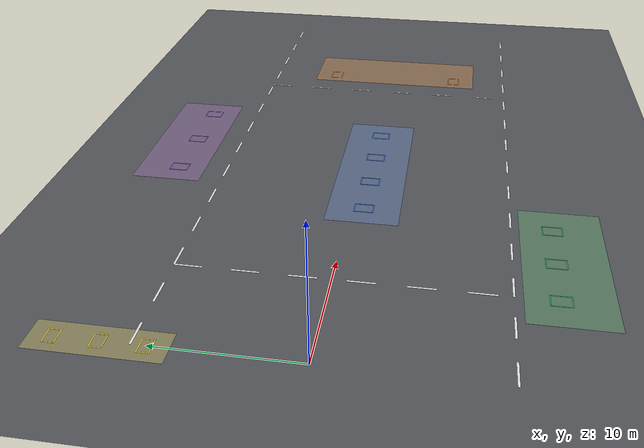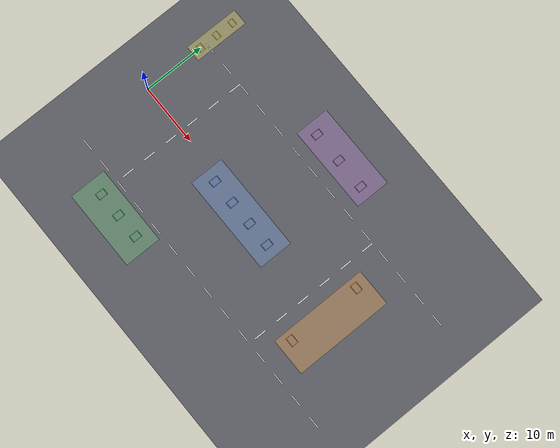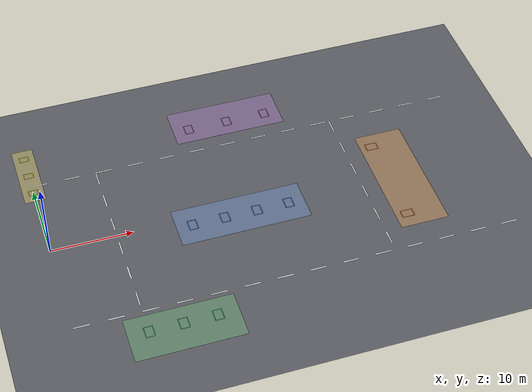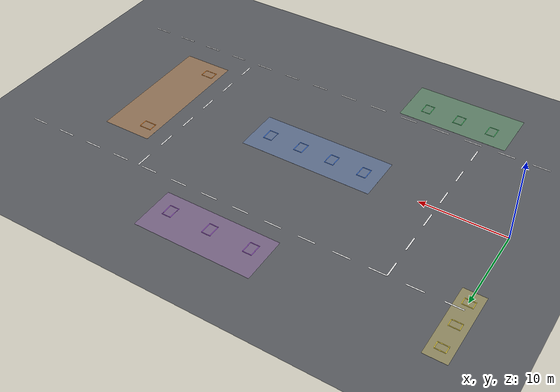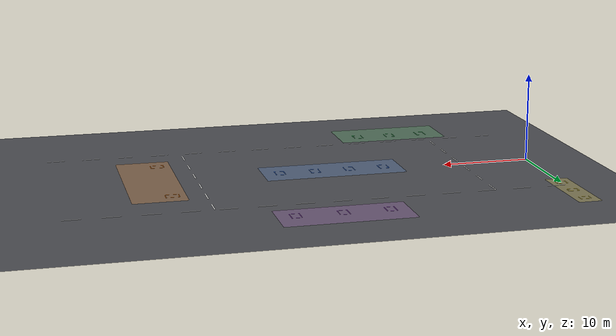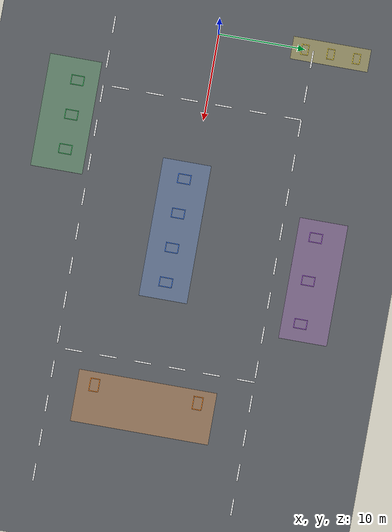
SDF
<sdf version="1.6">
 <world name="yektemak_port">
  <model name="ground_plane">
   <static>true</static>
   <link name="link">
    <collision name="collision">
     <geometry><plane><normal>0 0 1</normal><size>200 200</size></plane></geometry>
     <surface><friction><ode><mu>1.0</mu><mu2>1.0</mu2></ode></friction></surface>
    </collision>
    <visual name="visual">
     <cast_shadows>false</cast_shadows>
     <geometry><plane><normal>0 0 1</normal><size>200 200</size></plane></geometry>
     <material>
      <ambient>0.28 0.29 0.31 1</ambient>
      <diffuse>0.33 0.34 0.36 1</diffuse>
      <specular>0.15 0.15 0.15 1</specular>
     </material>
    </visual>
   </link>
  </model>
  <model name="port_markings">
   <static>true</static>
   <link name="link">
    <visual name="b739_v">
     <pose>12 -15.6 0.0015 0 0 0</pose>
     <cast_shadows>false</cast_shadows>
     <geometry><box><size>13 6 0.002</size></box></geometry>
     <material>
      <ambient>0.30 0.40 0.33 1</ambient>
      <diffuse>0.35 0.475 0.38749999999999996 1</diffuse>
      <specular>0.15 0.15 0.15 1</specular>
     </material>
    </visual>
    <visual name="b740_v">
     <pose>23 -1 0.0015 0 0 0</pose>
     <cast_shadows>false</cast_shadows>
     <geometry><box><size>16 5.6 0.002</size></box></geometry>
     <material>
      <ambient>0.30 0.35 0.45 1</ambient>
      <diffuse>0.35 0.4125 0.525 1</diffuse>
      <specular>0.15 0.15 0.15 1</specular>
     </material>
    </visual>
    <visual name="b741_v">
     <pose>43.5 -1 0.0015 0 0 0</pose>
     <cast_shadows>false</cast_shadows>
     <geometry><box><size>6 16 0.002</size></box></geometry>
     <material>
      <ambient>0.46 0.36 0.28 1</ambient>
      <diffuse>0.5375 0.425 0.325 1</diffuse>
      <specular>0.15 0.15 0.15 1</specular>
     </material>
    </visual>
    <visual name="b742_v">
     <pose>26 15.6 0.0015 0 0 0</pose>
     <cast_shadows>false</cast_shadows>
     <geometry><box><size>14 5.6 0.002</size></box></geometry>
     <material>
      <ambient>0.38 0.32 0.42 1</ambient>
      <diffuse>0.44999999999999996 0.375 0.5 1</diffuse>
      <specular>0.15 0.15 0.15 1</specular>
     </material>
    </visual>
    <visual name="b743_v">
     <pose>0 13 0.0015 0 0 0</pose>
     <cast_shadows>false</cast_shadows>
     <geometry><box><size>2.6 9 0.002</size></box></geometry>
     <material>
      <ambient>0.46 0.44 0.31 1</ambient>
      <diffuse>0.5375 0.5125 0.3625 1</diffuse>
      <specular>0.15 0.15 0.15 1</specular>
     </material>
    </visual>
    <visual name="b744_v">
     <pose>0 10.4 0.004 0 0 0</pose>
     <cast_shadows>false</cast_shadows>
     <geometry><box><size>1.23 0.08 0.002</size></box></geometry>
     <material>
      <ambient>0.81 0.72 0.21 1</ambient>
      <diffuse>0.95 0.85 0.25 1</diffuse>
      <specular>0.15 0.15 0.15 1</specular>
     </material>
    </visual>
    <visual name="b745_v">
     <pose>0 9.6 0.004 0 0 0</pose>
     <cast_shadows>false</cast_shadows>
     <geometry><box><size>1.23 0.08 0.002</size></box></geometry>
     <material>
      <ambient>0.81 0.72 0.21 1</ambient>
      <diffuse>0.95 0.85 0.25 1</diffuse>
      <specular>0.15 0.15 0.15 1</specular>
     </material>
    </visual>
    <visual name="b746_v">
     <pose>0.575 10 0.004 0 0 0</pose>
     <cast_shadows>false</cast_shadows>
     <geometry><box><size>0.08 0.8 0.002</size></box></geometry>
     <material>
      <ambient>0.81 0.72 0.21 1</ambient>
      <diffuse>0.95 0.85 0.25 1</diffuse>
      <specular>0.15 0.15 0.15 1</specular>
     </material>
    </visual>
    <visual name="b747_v">
     <pose>-0.575 10 0.004 0 0 0</pose>
     <cast_shadows>false</cast_shadows>
     <geometry><box><size>0.08 0.8 0.002</size></box></geometry>
     <material>
      <ambient>0.81 0.72 0.21 1</ambient>
      <diffuse>0.95 0.85 0.25 1</diffuse>
      <specular>0.15 0.15 0.15 1</specular>
     </material>
    </visual>
    <visual name="b748_v">
     <pose>0 13.4 0.004 0 0 0</pose>
     <cast_shadows>false</cast_shadows>
     <geometry><box><size>1.23 0.08 0.002</size></box></geometry>
     <material>
      <ambient>0.81 0.72 0.21 1</ambient>
      <diffuse>0.95 0.85 0.25 1</diffuse>
      <specular>0.15 0.15 0.15 1</specular>
     </material>
    </visual>
    <visual name="b749_v">
     <pose>0 12.6 0.004 0 0 0</pose>
     <cast_shadows>false</cast_shadows>
     <geometry><box><size>1.23 0.08 0.002</size></box></geometry>
     <material>
      <ambient>0.81 0.72 0.21 1</ambient>
      <diffuse>0.95 0.85 0.25 1</diffuse>
      <specular>0.15 0.15 0.15 1</specular>
     </material>
    </visual>
    <visual name="b750_v">
     <pose>0.575 13 0.004 0 0 0</pose>
     <cast_shadows>false</cast_shadows>
     <geometry><box><size>0.08 0.8 0.002</size></box></geometry>
     <material>
      <ambient>0.81 0.72 0.21 1</ambient>
      <diffuse>0.95 0.85 0.25 1</diffuse>
      <specular>0.15 0.15 0.15 1</specular>
     </material>
    </visual>
    <visual name="b751_v">
     <pose>-0.575 13 0.004 0 0 0</pose>
     <cast_shadows>false</cast_shadows>
     <geometry><box><size>0.08 0.8 0.002</size></box></geometry>
     <material>
      <ambient>0.81 0.72 0.21 1</ambient>
      <diffuse>0.95 0.85 0.25 1</diffuse>
      <specular>0.15 0.15 0.15 1</specular>
     </material>
    </visual>
    <visual name="b752_v">
     <pose>0 16.4 0.004 0 0 0</pose>
     <cast_shadows>false</cast_shadows>
     <geometry><box><size>1.23 0.08 0.002</size></box></geometry>
     <material>
      <ambient>0.81 0.72 0.21 1</ambient>
      <diffuse>0.95 0.85 0.25 1</diffuse>
      <specular>0.15 0.15 0.15 1</specular>
     </material>
    </visual>
    <visual name="b753_v">
     <pose>0 15.6 0.004 0 0 0</pose>
     <cast_shadows>false</cast_shadows>
     <geometry><box><size>1.23 0.08 0.002</size></box></geometry>
     <material>
      <ambient>0.81 0.72 0.21 1</ambient>
      <diffuse>0.95 0.85 0.25 1</diffuse>
      <specular>0.15 0.15 0.15 1</specular>
     </material>
    </visual>
    <visual name="b754_v">
     <pose>0.575 16 0.004 0 0 0</pose>
     <cast_shadows>false</cast_shadows>
     <geometry><box><size>0.08 0.8 0.002</size></box></geometry>
     <material>
      <ambient>0.81 0.72 0.21 1</ambient>
      <diffuse>0.95 0.85 0.25 1</diffuse>
      <specular>0.15 0.15 0.15 1</specular>
     </material>
    </visual>
    <visual name="b755_v">
     <pose>-0.575 16 0.004 0 0 0</pose>
     <cast_shadows>false</cast_shadows>
     <geometry><box><size>0.08 0.8 0.002</size></box></geometry>
     <material>
      <ambient>0.81 0.72 0.21 1</ambient>
      <diffuse>0.95 0.85 0.25 1</diffuse>
      <specular>0.15 0.15 0.15 1</specular>
     </material>
    </visual>
    <visual name="b756_v">
     <pose>8 -14.28 0.004 0 0 0</pose>
     <cast_shadows>false</cast_shadows>
     <geometry><box><size>1.13 0.08 0.002</size></box></geometry>
     <material>
      <ambient>0.17 0.59 0.30 1</ambient>
      <diffuse>0.2 0.7 0.35 1</diffuse>
      <specular>0.15 0.15 0.15 1</specular>
     </material>
    </visual>
    <visual name="b757_v">
     <pose>8 -15.72 0.004 0 0 0</pose>
     <cast_shadows>false</cast_shadows>
     <geometry><box><size>1.13 0.08 0.002</size></box></geometry>
     <material>
      <ambient>0.17 0.59 0.30 1</ambient>
      <diffuse>0.2 0.7 0.35 1</diffuse>
      <specular>0.15 0.15 0.15 1</specular>
     </material>
    </visual>
    <visual name="b758_v">
     <pose>8.525 -15 0.004 0 0 0</pose>
     <cast_shadows>false</cast_shadows>
     <geometry><box><size>0.08 1.45 0.002</size></box></geometry>
     <material>
      <ambient>0.17 0.59 0.30 1</ambient>
      <diffuse>0.2 0.7 0.35 1</diffuse>
      <specular>0.15 0.15 0.15 1</specular>
     </material>
    </visual>
    <visual name="b759_v">
     <pose>7.475 -15 0.004 0 0 0</pose>
     <cast_shadows>false</cast_shadows>
     <geometry><box><size>0.08 1.45 0.002</size></box></geometry>
     <material>
      <ambient>0.17 0.59 0.30 1</ambient>
      <diffuse>0.2 0.7 0.35 1</diffuse>
      <specular>0.15 0.15 0.15 1</specular>
     </material>
    </visual>
    <visual name="b760_v">
     <pose>12 -14.28 0.004 0 0 0</pose>
     <cast_shadows>false</cast_shadows>
     <geometry><box><size>1.13 0.08 0.002</size></box></geometry>
     <material>
      <ambient>0.17 0.59 0.30 1</ambient>
      <diffuse>0.2 0.7 0.35 1</diffuse>
      <specular>0.15 0.15 0.15 1</specular>
     </material>
    </visual>
    <visual name="b761_v">
     <pose>12 -15.72 0.004 0 0 0</pose>
     <cast_shadows>false</cast_shadows>
     <geometry><box><size>1.13 0.08 0.002</size></box></geometry>
     <material>
      <ambient>0.17 0.59 0.30 1</ambient>
      <diffuse>0.2 0.7 0.35 1</diffuse>
      <specular>0.15 0.15 0.15 1</specular>
     </material>
    </visual>
    <visual name="b762_v">
     <pose>12.53 -15 0.004 0 0 0</pose>
     <cast_shadows>false</cast_shadows>
     <geometry><box><size>0.08 1.45 0.002</size></box></geometry>
     <material>
      <ambient>0.17 0.59 0.30 1</ambient>
      <diffuse>0.2 0.7 0.35 1</diffuse>
      <specular>0.15 0.15 0.15 1</specular>
     </material>
    </visual>
    <visual name="b763_v">
     <pose>11.47 -15 0.004 0 0 0</pose>
     <cast_shadows>false</cast_shadows>
     <geometry><box><size>0.08 1.45 0.002</size></box></geometry>
     <material>
      <ambient>0.17 0.59 0.30 1</ambient>
      <diffuse>0.2 0.7 0.35 1</diffuse>
      <specular>0.15 0.15 0.15 1</specular>
     </material>
    </visual>
    <visual name="b764_v">
     <pose>16 -14.28 0.004 0 0 0</pose>
     <cast_shadows>false</cast_shadows>
     <geometry><box><size>1.13 0.08 0.002</size></box></geometry>
     <material>
      <ambient>0.17 0.59 0.30 1</ambient>
      <diffuse>0.2 0.7 0.35 1</diffuse>
      <specular>0.15 0.15 0.15 1</specular>
     </material>
    </visual>
    <visual name="b765_v">
     <pose>16 -15.72 0.004 0 0 0</pose>
     <cast_shadows>false</cast_shadows>
     <geometry><box><size>1.13 0.08 0.002</size></box></geometry>
     <material>
      <ambient>0.17 0.59 0.30 1</ambient>
      <diffuse>0.2 0.7 0.35 1</diffuse>
      <specular>0.15 0.15 0.15 1</specular>
     </material>
    </visual>
    <visual name="b766_v">
     <pose>16.52 -15 0.004 0 0 0</pose>
     <cast_shadows>false</cast_shadows>
     <geometry><box><size>0.08 1.45 0.002</size></box></geometry>
     <material>
      <ambient>0.17 0.59 0.30 1</ambient>
      <diffuse>0.2 0.7 0.35 1</diffuse>
      <specular>0.15 0.15 0.15 1</specular>
     </material>
    </visual>
    <visual name="b767_v">
     <pose>15.47 -15 0.004 0 0 0</pose>
     <cast_shadows>false</cast_shadows>
     <geometry><box><size>0.08 1.45 0.002</size></box></geometry>
     <material>
      <ambient>0.17 0.59 0.30 1</ambient>
      <diffuse>0.2 0.7 0.35 1</diffuse>
      <specular>0.15 0.15 0.15 1</specular>
     </material>
    </visual>
    <visual name="b768_v">
     <pose>17 -0.275 0.004 0 0 0</pose>
     <cast_shadows>false</cast_shadows>
     <geometry><box><size>1.13 0.08 0.002</size></box></geometry>
     <material>
      <ambient>0.17 0.38 0.77 1</ambient>
      <diffuse>0.2 0.45 0.9 1</diffuse>
      <specular>0.15 0.15 0.15 1</specular>
     </material>
    </visual>
    <visual name="b769_v">
     <pose>17 -1.725 0.004 0 0 0</pose>
     <cast_shadows>false</cast_shadows>
     <geometry><box><size>1.13 0.08 0.002</size></box></geometry>
     <material>
      <ambient>0.17 0.38 0.77 1</ambient>
      <diffuse>0.2 0.45 0.9 1</diffuse>
      <specular>0.15 0.15 0.15 1</specular>
     </material>
    </visual>
    <visual name="b770_v">
     <pose>17.52 -1 0.004 0 0 0</pose>
     <cast_shadows>false</cast_shadows>
     <geometry><box><size>0.08 1.45 0.002</size></box></geometry>
     <material>
      <ambient>0.17 0.38 0.77 1</ambient>
      <diffuse>0.2 0.45 0.9 1</diffuse>
      <specular>0.15 0.15 0.15 1</specular>
     </material>
    </visual>
    <visual name="b771_v">
     <pose>16.48 -1 0.004 0 0 0</pose>
     <cast_shadows>false</cast_shadows>
     <geometry><box><size>0.08 1.45 0.002</size></box></geometry>
     <material>
      <ambient>0.17 0.38 0.77 1</ambient>
      <diffuse>0.2 0.45 0.9 1</diffuse>
      <specular>0.15 0.15 0.15 1</specular>
     </material>
    </visual>
    <visual name="b772_v">
     <pose>21 -0.275 0.004 0 0 0</pose>
     <cast_shadows>false</cast_shadows>
     <geometry><box><size>1.13 0.08 0.002</size></box></geometry>
     <material>
      <ambient>0.17 0.38 0.77 1</ambient>
      <diffuse>0.2 0.45 0.9 1</diffuse>
      <specular>0.15 0.15 0.15 1</specular>
     </material>
    </visual>
    <visual name="b773_v">
     <pose>21 -1.725 0.004 0 0 0</pose>
     <cast_shadows>false</cast_shadows>
     <geometry><box><size>1.13 0.08 0.002</size></box></geometry>
     <material>
      <ambient>0.17 0.38 0.77 1</ambient>
      <diffuse>0.2 0.45 0.9 1</diffuse>
      <specular>0.15 0.15 0.15 1</specular>
     </material>
    </visual>
    <visual name="b774_v">
     <pose>21.52 -1 0.004 0 0 0</pose>
     <cast_shadows>false</cast_shadows>
     <geometry><box><size>0.08 1.45 0.002</size></box></geometry>
     <material>
      <ambient>0.17 0.38 0.77 1</ambient>
      <diffuse>0.2 0.45 0.9 1</diffuse>
      <specular>0.15 0.15 0.15 1</specular>
     </material>
    </visual>
    <visual name="b775_v">
     <pose>20.48 -1 0.004 0 0 0</pose>
     <cast_shadows>false</cast_shadows>
     <geometry><box><size>0.08 1.45 0.002</size></box></geometry>
     <material>
      <ambient>0.17 0.38 0.77 1</ambient>
      <diffuse>0.2 0.45 0.9 1</diffuse>
      <specular>0.15 0.15 0.15 1</specular>
     </material>
    </visual>
    <visual name="b776_v">
     <pose>25 -0.275 0.004 0 0 0</pose>
     <cast_shadows>false</cast_shadows>
     <geometry><box><size>1.13 0.08 0.002</size></box></geometry>
     <material>
      <ambient>0.17 0.38 0.77 1</ambient>
      <diffuse>0.2 0.45 0.9 1</diffuse>
      <specular>0.15 0.15 0.15 1</specular>
     </material>
    </visual>
    <visual name="b777_v">
     <pose>25 -1.725 0.004 0 0 0</pose>
     <cast_shadows>false</cast_shadows>
     <geometry><box><size>1.13 0.08 0.002</size></box></geometry>
     <material>
      <ambient>0.17 0.38 0.77 1</ambient>
      <diffuse>0.2 0.45 0.9 1</diffuse>
      <specular>0.15 0.15 0.15 1</specular>
     </material>
    </visual>
    <visual name="b778_v">
     <pose>25.52 -1 0.004 0 0 0</pose>
     <cast_shadows>false</cast_shadows>
     <geometry><box><size>0.08 1.45 0.002</size></box></geometry>
     <material>
      <ambient>0.17 0.38 0.77 1</ambient>
      <diffuse>0.2 0.45 0.9 1</diffuse>
      <specular>0.15 0.15 0.15 1</specular>
     </material>
    </visual>
    <visual name="b779_v">
     <pose>24.48 -1 0.004 0 0 0</pose>
     <cast_shadows>false</cast_shadows>
     <geometry><box><size>0.08 1.45 0.002</size></box></geometry>
     <material>
      <ambient>0.17 0.38 0.77 1</ambient>
      <diffuse>0.2 0.45 0.9 1</diffuse>
      <specular>0.15 0.15 0.15 1</specular>
     </material>
    </visual>
    <visual name="b780_v">
     <pose>29 -0.275 0.004 0 0 0</pose>
     <cast_shadows>false</cast_shadows>
     <geometry><box><size>1.13 0.08 0.002</size></box></geometry>
     <material>
      <ambient>0.17 0.38 0.77 1</ambient>
      <diffuse>0.2 0.45 0.9 1</diffuse>
      <specular>0.15 0.15 0.15 1</specular>
     </material>
    </visual>
    <visual name="b781_v">
     <pose>29 -1.725 0.004 0 0 0</pose>
     <cast_shadows>false</cast_shadows>
     <geometry><box><size>1.13 0.08 0.002</size></box></geometry>
     <material>
      <ambient>0.17 0.38 0.77 1</ambient>
      <diffuse>0.2 0.45 0.9 1</diffuse>
      <specular>0.15 0.15 0.15 1</specular>
     </material>
    </visual>
    <visual name="b782_v">
     <pose>29.52 -1 0.004 0 0 0</pose>
     <cast_shadows>false</cast_shadows>
     <geometry><box><size>0.08 1.45 0.002</size></box></geometry>
     <material>
      <ambient>0.17 0.38 0.77 1</ambient>
      <diffuse>0.2 0.45 0.9 1</diffuse>
      <specular>0.15 0.15 0.15 1</specular>
     </material>
    </visual>
    <visual name="b783_v">
     <pose>28.48 -1 0.004 0 0 0</pose>
     <cast_shadows>false</cast_shadows>
     <geometry><box><size>0.08 1.45 0.002</size></box></geometry>
     <material>
      <ambient>0.17 0.38 0.77 1</ambient>
      <diffuse>0.2 0.45 0.9 1</diffuse>
      <specular>0.15 0.15 0.15 1</specular>
     </material>
    </visual>
    <visual name="b784_v">
     <pose>42 5.525 0.004 0 0 0</pose>
     <cast_shadows>false</cast_shadows>
     <geometry><box><size>1.53 0.08 0.002</size></box></geometry>
     <material>
      <ambient>0.81 0.42 0.09 1</ambient>
      <diffuse>0.95 0.5 0.1 1</diffuse>
      <specular>0.15 0.15 0.15 1</specular>
     </material>
    </visual>
    <visual name="b785_v">
     <pose>42 4.475 0.004 0 0 0</pose>
     <cast_shadows>false</cast_shadows>
     <geometry><box><size>1.53 0.08 0.002</size></box></geometry>
     <material>
      <ambient>0.81 0.42 0.09 1</ambient>
      <diffuse>0.95 0.5 0.1 1</diffuse>
      <specular>0.15 0.15 0.15 1</specular>
     </material>
    </visual>
    <visual name="b786_v">
     <pose>42.73 5 0.004 0 0 0</pose>
     <cast_shadows>false</cast_shadows>
     <geometry><box><size>0.08 1.05 0.002</size></box></geometry>
     <material>
      <ambient>0.81 0.42 0.09 1</ambient>
      <diffuse>0.95 0.5 0.1 1</diffuse>
      <specular>0.15 0.15 0.15 1</specular>
     </material>
    </visual>
    <visual name="b787_v">
     <pose>41.27 5 0.004 0 0 0</pose>
     <cast_shadows>false</cast_shadows>
     <geometry><box><size>0.08 1.05 0.002</size></box></geometry>
     <material>
      <ambient>0.81 0.42 0.09 1</ambient>
      <diffuse>0.95 0.5 0.1 1</diffuse>
      <specular>0.15 0.15 0.15 1</specular>
     </material>
    </visual>
    <visual name="b788_v">
     <pose>42 -6.475 0.004 0 0 0</pose>
     <cast_shadows>false</cast_shadows>
     <geometry><box><size>1.53 0.08 0.002</size></box></geometry>
     <material>
      <ambient>0.81 0.42 0.09 1</ambient>
      <diffuse>0.95 0.5 0.1 1</diffuse>
      <specular>0.15 0.15 0.15 1</specular>
     </material>
    </visual>
    <visual name="b789_v">
     <pose>42 -7.525 0.004 0 0 0</pose>
     <cast_shadows>false</cast_shadows>
     <geometry><box><size>1.53 0.08 0.002</size></box></geometry>
     <material>
      <ambient>0.81 0.42 0.09 1</ambient>
      <diffuse>0.95 0.5 0.1 1</diffuse>
      <specular>0.15 0.15 0.15 1</specular>
     </material>
    </visual>
    <visual name="b790_v">
     <pose>42.73 -7 0.004 0 0 0</pose>
     <cast_shadows>false</cast_shadows>
     <geometry><box><size>0.08 1.05 0.002</size></box></geometry>
     <material>
      <ambient>0.81 0.42 0.09 1</ambient>
      <diffuse>0.95 0.5 0.1 1</diffuse>
      <specular>0.15 0.15 0.15 1</specular>
     </material>
    </visual>
    <visual name="b791_v">
     <pose>41.27 -7 0.004 0 0 0</pose>
     <cast_shadows>false</cast_shadows>
     <geometry><box><size>0.08 1.05 0.002</size></box></geometry>
     <material>
      <ambient>0.81 0.42 0.09 1</ambient>
      <diffuse>0.95 0.5 0.1 1</diffuse>
      <specular>0.15 0.15 0.15 1</specular>
     </material>
    </visual>
    <visual name="b792_v">
     <pose>21 15.72 0.004 0 0 0</pose>
     <cast_shadows>false</cast_shadows>
     <geometry><box><size>1.13 0.08 0.002</size></box></geometry>
     <material>
      <ambient>0.51 0.26 0.68 1</ambient>
      <diffuse>0.6 0.3 0.8 1</diffuse>
      <specular>0.15 0.15 0.15 1</specular>
     </material>
    </visual>
    <visual name="b793_v">
     <pose>21 14.28 0.004 0 0 0</pose>
     <cast_shadows>false</cast_shadows>
     <geometry><box><size>1.13 0.08 0.002</size></box></geometry>
     <material>
      <ambient>0.51 0.26 0.68 1</ambient>
      <diffuse>0.6 0.3 0.8 1</diffuse>
      <specular>0.15 0.15 0.15 1</specular>
     </material>
    </visual>
    <visual name="b794_v">
     <pose>21.52 15 0.004 0 0 0</pose>
     <cast_shadows>false</cast_shadows>
     <geometry><box><size>0.08 1.45 0.002</size></box></geometry>
     <material>
      <ambient>0.51 0.26 0.68 1</ambient>
      <diffuse>0.6 0.3 0.8 1</diffuse>
      <specular>0.15 0.15 0.15 1</specular>
     </material>
    </visual>
    <visual name="b795_v">
     <pose>20.48 15 0.004 0 0 0</pose>
     <cast_shadows>false</cast_shadows>
     <geometry><box><size>0.08 1.45 0.002</size></box></geometry>
     <material>
      <ambient>0.51 0.26 0.68 1</ambient>
      <diffuse>0.6 0.3 0.8 1</diffuse>
      <specular>0.15 0.15 0.15 1</specular>
     </material>
    </visual>
    <visual name="b796_v">
     <pose>26 15.72 0.004 0 0 0</pose>
     <cast_shadows>false</cast_shadows>
     <geometry><box><size>1.13 0.08 0.002</size></box></geometry>
     <material>
      <ambient>0.51 0.26 0.68 1</ambient>
      <diffuse>0.6 0.3 0.8 1</diffuse>
      <specular>0.15 0.15 0.15 1</specular>
     </material>
    </visual>
    <visual name="b797_v">
     <pose>26 14.28 0.004 0 0 0</pose>
     <cast_shadows>false</cast_shadows>
     <geometry><box><size>1.13 0.08 0.002</size></box></geometry>
     <material>
      <ambient>0.51 0.26 0.68 1</ambient>
      <diffuse>0.6 0.3 0.8 1</diffuse>
      <specular>0.15 0.15 0.15 1</specular>
     </material>
    </visual>
    <visual name="b798_v">
     <pose>26.52 15 0.004 0 0 0</pose>
     <cast_shadows>false</cast_shadows>
     <geometry><box><size>0.08 1.45 0.002</size></box></geometry>
     <material>
      <ambient>0.51 0.26 0.68 1</ambient>
      <diffuse>0.6 0.3 0.8 1</diffuse>
      <specular>0.15 0.15 0.15 1</specular>
     </material>
    </visual>
    <visual name="b799_v">
     <pose>25.48 15 0.004 0 0 0</pose>
     <cast_shadows>false</cast_shadows>
     <geometry><box><size>0.08 1.45 0.002</size></box></geometry>
     <material>
      <ambient>0.51 0.26 0.68 1</ambient>
      <diffuse>0.6 0.3 0.8 1</diffuse>
      <specular>0.15 0.15 0.15 1</specular>
     </material>
    </visual>
    <visual name="b800_v">
     <pose>31 15.72 0.004 0 0 0</pose>
     <cast_shadows>false</cast_shadows>
     <geometry><box><size>1.13 0.08 0.002</size></box></geometry>
     <material>
      <ambient>0.51 0.26 0.68 1</ambient>
      <diffuse>0.6 0.3 0.8 1</diffuse>
      <specular>0.15 0.15 0.15 1</specular>
     </material>
    </visual>
    <visual name="b801_v">
     <pose>31 14.28 0.004 0 0 0</pose>
     <cast_shadows>false</cast_shadows>
     <geometry><box><size>1.13 0.08 0.002</size></box></geometry>
     <material>
      <ambient>0.51 0.26 0.68 1</ambient>
      <diffuse>0.6 0.3 0.8 1</diffuse>
      <specular>0.15 0.15 0.15 1</specular>
     </material>
    </visual>
    <visual name="b802_v">
     <pose>31.52 15 0.004 0 0 0</pose>
     <cast_shadows>false</cast_shadows>
     <geometry><box><size>0.08 1.45 0.002</size></box></geometry>
     <material>
      <ambient>0.51 0.26 0.68 1</ambient>
      <diffuse>0.6 0.3 0.8 1</diffuse>
      <specular>0.15 0.15 0.15 1</specular>
     </material>
    </visual>
    <visual name="b803_v">
     <pose>30.48 15 0.004 0 0 0</pose>
     <cast_shadows>false</cast_shadows>
     <geometry><box><size>0.08 1.45 0.002</size></box></geometry>
     <material>
      <ambient>0.51 0.26 0.68 1</ambient>
      <diffuse>0.6 0.3 0.8 1</diffuse>
      <specular>0.15 0.15 0.15 1</specular>
     </material>
    </visual>
    <visual name="b804_v">
     <pose>1 11 0.003 0 0 0</pose>
     <cast_shadows>false</cast_shadows>
     <geometry><box><size>2 0.15 0.002</size></box></geometry>
     <material>
      <ambient>0.78 0.78 0.78 1</ambient>
      <diffuse>0.92 0.92 0.92 1</diffuse>
      <specular>0.15 0.15 0.15 1</specular>
     </material>
    </visual>
    <visual name="b805_v">
     <pose>5 11 0.003 0 0 0</pose>
     <cast_shadows>false</cast_shadows>
     <geometry><box><size>2 0.15 0.002</size></box></geometry>
     <material>
      <ambient>0.78 0.78 0.78 1</ambient>
      <diffuse>0.92 0.92 0.92 1</diffuse>
      <specular>0.15 0.15 0.15 1</specular>
     </material>
    </visual>
    <visual name="b806_v">
     <pose>9 11 0.003 0 0 0</pose>
     <cast_shadows>false</cast_shadows>
     <geometry><box><size>2 0.15 0.002</size></box></geometry>
     <material>
      <ambient>0.78 0.78 0.78 1</ambient>
      <diffuse>0.92 0.92 0.92 1</diffuse>
      <specular>0.15 0.15 0.15 1</specular>
     </material>
    </visual>
    <visual name="b807_v">
     <pose>13 11 0.003 0 0 0</pose>
     <cast_shadows>false</cast_shadows>
     <geometry><box><size>2 0.15 0.002</size></box></geometry>
     <material>
      <ambient>0.78 0.78 0.78 1</ambient>
      <diffuse>0.92 0.92 0.92 1</diffuse>
      <specular>0.15 0.15 0.15 1</specular>
     </material>
    </visual>
    <visual name="b808_v">
     <pose>17 11 0.003 0 0 0</pose>
     <cast_shadows>false</cast_shadows>
     <geometry><box><size>2 0.15 0.002</size></box></geometry>
     <material>
      <ambient>0.78 0.78 0.78 1</ambient>
      <diffuse>0.92 0.92 0.92 1</diffuse>
      <specular>0.15 0.15 0.15 1</specular>
     </material>
    </visual>
    <visual name="b809_v">
     <pose>21 11 0.003 0 0 0</pose>
     <cast_shadows>false</cast_shadows>
     <geometry><box><size>2 0.15 0.002</size></box></geometry>
     <material>
      <ambient>0.78 0.78 0.78 1</ambient>
      <diffuse>0.92 0.92 0.92 1</diffuse>
      <specular>0.15 0.15 0.15 1</specular>
     </material>
    </visual>
    <visual name="b810_v">
     <pose>25 11 0.003 0 0 0</pose>
     <cast_shadows>false</cast_shadows>
     <geometry><box><size>2 0.15 0.002</size></box></geometry>
     <material>
      <ambient>0.78 0.78 0.78 1</ambient>
      <diffuse>0.92 0.92 0.92 1</diffuse>
      <specular>0.15 0.15 0.15 1</specular>
     </material>
    </visual>
    <visual name="b811_v">
     <pose>29 11 0.003 0 0 0</pose>
     <cast_shadows>false</cast_shadows>
     <geometry><box><size>2 0.15 0.002</size></box></geometry>
     <material>
      <ambient>0.78 0.78 0.78 1</ambient>
      <diffuse>0.92 0.92 0.92 1</diffuse>
      <specular>0.15 0.15 0.15 1</specular>
     </material>
    </visual>
    <visual name="b812_v">
     <pose>33 11 0.003 0 0 0</pose>
     <cast_shadows>false</cast_shadows>
     <geometry><box><size>2 0.15 0.002</size></box></geometry>
     <material>
      <ambient>0.78 0.78 0.78 1</ambient>
      <diffuse>0.92 0.92 0.92 1</diffuse>
      <specular>0.15 0.15 0.15 1</specular>
     </material>
    </visual>
    <visual name="b813_v">
     <pose>37 11 0.003 0 0 0</pose>
     <cast_shadows>false</cast_shadows>
     <geometry><box><size>2 0.15 0.002</size></box></geometry>
     <material>
      <ambient>0.78 0.78 0.78 1</ambient>
      <diffuse>0.92 0.92 0.92 1</diffuse>
      <specular>0.15 0.15 0.15 1</specular>
     </material>
    </visual>
    <visual name="b814_v">
     <pose>41 11 0.003 0 0 0</pose>
     <cast_shadows>false</cast_shadows>
     <geometry><box><size>2 0.15 0.002</size></box></geometry>
     <material>
      <ambient>0.78 0.78 0.78 1</ambient>
      <diffuse>0.92 0.92 0.92 1</diffuse>
      <specular>0.15 0.15 0.15 1</specular>
     </material>
    </visual>
    <visual name="b815_v">
     <pose>45 11 0.003 0 0 0</pose>
     <cast_shadows>false</cast_shadows>
     <geometry><box><size>2 0.15 0.002</size></box></geometry>
     <material>
      <ambient>0.78 0.78 0.78 1</ambient>
      <diffuse>0.92 0.92 0.92 1</diffuse>
      <specular>0.15 0.15 0.15 1</specular>
     </material>
    </visual>
    <visual name="b816_v">
     <pose>49 11 0.003 0 0 0</pose>
     <cast_shadows>false</cast_shadows>
     <geometry><box><size>2 0.15 0.002</size></box></geometry>
     <material>
      <ambient>0.78 0.78 0.78 1</ambient>
      <diffuse>0.92 0.92 0.92 1</diffuse>
      <specular>0.15 0.15 0.15 1</specular>
     </material>
    </visual>
    <visual name="b817_v">
     <pose>53 11 0.003 0 0 0</pose>
     <cast_shadows>false</cast_shadows>
     <geometry><box><size>2 0.15 0.002</size></box></geometry>
     <material>
      <ambient>0.78 0.78 0.78 1</ambient>
      <diffuse>0.92 0.92 0.92 1</diffuse>
      <specular>0.15 0.15 0.15 1</specular>
     </material>
    </visual>
    <visual name="b818_v">
     <pose>1 -12 0.003 0 0 0</pose>
     <cast_shadows>false</cast_shadows>
     <geometry><box><size>2 0.15 0.002</size></box></geometry>
     <material>
      <ambient>0.78 0.78 0.78 1</ambient>
      <diffuse>0.92 0.92 0.92 1</diffuse>
      <specular>0.15 0.15 0.15 1</specular>
     </material>
    </visual>
    <visual name="b819_v">
     <pose>5 -12 0.003 0 0 0</pose>
     <cast_shadows>false</cast_shadows>
     <geometry><box><size>2 0.15 0.002</size></box></geometry>
     <material>
      <ambient>0.78 0.78 0.78 1</ambient>
      <diffuse>0.92 0.92 0.92 1</diffuse>
      <specular>0.15 0.15 0.15 1</specular>
     </material>
    </visual>
    <visual name="b820_v">
     <pose>9 -12 0.003 0 0 0</pose>
     <cast_shadows>false</cast_shadows>
     <geometry><box><size>2 0.15 0.002</size></box></geometry>
     <material>
      <ambient>0.78 0.78 0.78 1</ambient>
      <diffuse>0.92 0.92 0.92 1</diffuse>
      <specular>0.15 0.15 0.15 1</specular>
     </material>
    </visual>
    <visual name="b821_v">
     <pose>13 -12 0.003 0 0 0</pose>
     <cast_shadows>false</cast_shadows>
     <geometry><box><size>2 0.15 0.002</size></box></geometry>
     <material>
      <ambient>0.78 0.78 0.78 1</ambient>
      <diffuse>0.92 0.92 0.92 1</diffuse>
      <specular>0.15 0.15 0.15 1</specular>
     </material>
    </visual>
    <visual name="b822_v">
     <pose>17 -12 0.003 0 0 0</pose>
     <cast_shadows>false</cast_shadows>
     <geometry><box><size>2 0.15 0.002</size></box></geometry>
     <material>
      <ambient>0.78 0.78 0.78 1</ambient>
      <diffuse>0.92 0.92 0.92 1</diffuse>
      <specular>0.15 0.15 0.15 1</specular>
     </material>
    </visual>
    <visual name="b823_v">
     <pose>21 -12 0.003 0 0 0</pose>
     <cast_shadows>false</cast_shadows>
     <geometry><box><size>2 0.15 0.002</size></box></geometry>
     <material>
      <ambient>0.78 0.78 0.78 1</ambient>
      <diffuse>0.92 0.92 0.92 1</diffuse>
      <specular>0.15 0.15 0.15 1</specular>
     </material>
    </visual>
    <visual name="b824_v">
     <pose>25 -12 0.003 0 0 0</pose>
     <cast_shadows>false</cast_shadows>
     <geometry><box><size>2 0.15 0.002</size></box></geometry>
     <material>
      <ambient>0.78 0.78 0.78 1</ambient>
      <diffuse>0.92 0.92 0.92 1</diffuse>
      <specular>0.15 0.15 0.15 1</specular>
     </material>
    </visual>
    <visual name="b825_v">
     <pose>29 -12 0.003 0 0 0</pose>
     <cast_shadows>false</cast_shadows>
     <geometry><box><size>2 0.15 0.002</size></box></geometry>
     <material>
      <ambient>0.78 0.78 0.78 1</ambient>
      <diffuse>0.92 0.92 0.92 1</diffuse>
      <specular>0.15 0.15 0.15 1</specular>
     </material>
    </visual>
    <visual name="b826_v">
     <pose>33 -12 0.003 0 0 0</pose>
     <cast_shadows>false</cast_shadows>
     <geometry><box><size>2 0.15 0.002</size></box></geometry>
     <material>
      <ambient>0.78 0.78 0.78 1</ambient>
      <diffuse>0.92 0.92 0.92 1</diffuse>
      <specular>0.15 0.15 0.15 1</specular>
     </material>
    </visual>
    <visual name="b827_v">
     <pose>37 -12 0.003 0 0 0</pose>
     <cast_shadows>false</cast_shadows>
     <geometry><box><size>2 0.15 0.002</size></box></geometry>
     <material>
      <ambient>0.78 0.78 0.78 1</ambient>
      <diffuse>0.92 0.92 0.92 1</diffuse>
      <specular>0.15 0.15 0.15 1</specular>
     </material>
    </visual>
    <visual name="b828_v">
     <pose>41 -12 0.003 0 0 0</pose>
     <cast_shadows>false</cast_shadows>
     <geometry><box><size>2 0.15 0.002</size></box></geometry>
     <material>
      <ambient>0.78 0.78 0.78 1</ambient>
      <diffuse>0.92 0.92 0.92 1</diffuse>
      <specular>0.15 0.15 0.15 1</specular>
     </material>
    </visual>
    <visual name="b829_v">
     <pose>45 -12 0.003 0 0 0</pose>
     <cast_shadows>false</cast_shadows>
     <geometry><box><size>2 0.15 0.002</size></box></geometry>
     <material>
      <ambient>0.78 0.78 0.78 1</ambient>
      <diffuse>0.92 0.92 0.92 1</diffuse>
      <specular>0.15 0.15 0.15 1</specular>
     </material>
    </visual>
    <visual name="b830_v">
     <pose>49 -12 0.003 0 0 0</pose>
     <cast_shadows>false</cast_shadows>
     <geometry><box><size>2 0.15 0.002</size></box></geometry>
     <material>
      <ambient>0.78 0.78 0.78 1</ambient>
      <diffuse>0.92 0.92 0.92 1</diffuse>
      <specular>0.15 0.15 0.15 1</specular>
     </material>
    </visual>
    <visual name="b831_v">
     <pose>53 -12 0.003 0 0 0</pose>
     <cast_shadows>false</cast_shadows>
     <geometry><box><size>2 0.15 0.002</size></box></geometry>
     <material>
      <ambient>0.78 0.78 0.78 1</ambient>
      <diffuse>0.92 0.92 0.92 1</diffuse>
      <specular>0.15 0.15 0.15 1</specular>
     </material>
    </visual>
    <visual name="b832_v">
     <pose>8 -10 0.003 0 0 0</pose>
     <cast_shadows>false</cast_shadows>
     <geometry><box><size>0.15 2 0.002</size></box></geometry>
     <material>
      <ambient>0.78 0.78 0.78 1</ambient>
      <diffuse>0.92 0.92 0.92 1</diffuse>
      <specular>0.15 0.15 0.15 1</specular>
     </material>
    </visual>
    <visual name="b833_v">
     <pose>8 -6 0.003 0 0 0</pose>
     <cast_shadows>false</cast_shadows>
     <geometry><box><size>0.15 2 0.002</size></box></geometry>
     <material>
      <ambient>0.78 0.78 0.78 1</ambient>
      <diffuse>0.92 0.92 0.92 1</diffuse>
      <specular>0.15 0.15 0.15 1</specular>
     </material>
    </visual>
    <visual name="b834_v">
     <pose>8 -2 0.003 0 0 0</pose>
     <cast_shadows>false</cast_shadows>
     <geometry><box><size>0.15 2 0.002</size></box></geometry>
     <material>
      <ambient>0.78 0.78 0.78 1</ambient>
      <diffuse>0.92 0.92 0.92 1</diffuse>
      <specular>0.15 0.15 0.15 1</specular>
     </material>
    </visual>
    <visual name="b835_v">
     <pose>8 2 0.003 0 0 0</pose>
     <cast_shadows>false</cast_shadows>
     <geometry><box><size>0.15 2 0.002</size></box></geometry>
     <material>
      <ambient>0.78 0.78 0.78 1</ambient>
      <diffuse>0.92 0.92 0.92 1</diffuse>
      <specular>0.15 0.15 0.15 1</specular>
     </material>
    </visual>
    <visual name="b836_v">
     <pose>8 6 0.003 0 0 0</pose>
     <cast_shadows>false</cast_shadows>
     <geometry><box><size>0.15 2 0.002</size></box></geometry>
     <material>
      <ambient>0.78 0.78 0.78 1</ambient>
      <diffuse>0.92 0.92 0.92 1</diffuse>
      <specular>0.15 0.15 0.15 1</specular>
     </material>
    </visual>
    <visual name="b837_v">
     <pose>8 10 0.003 0 0 0</pose>
     <cast_shadows>false</cast_shadows>
     <geometry><box><size>0.15 2 0.002</size></box></geometry>
     <material>
      <ambient>0.78 0.78 0.78 1</ambient>
      <diffuse>0.92 0.92 0.92 1</diffuse>
      <specular>0.15 0.15 0.15 1</specular>
     </material>
    </visual>
    <visual name="b838_v">
     <pose>38.5 -10 0.003 0 0 0</pose>
     <cast_shadows>false</cast_shadows>
     <geometry><box><size>0.15 2 0.002</size></box></geometry>
     <material>
      <ambient>0.78 0.78 0.78 1</ambient>
      <diffuse>0.92 0.92 0.92 1</diffuse>
      <specular>0.15 0.15 0.15 1</specular>
     </material>
    </visual>
    <visual name="b839_v">
     <pose>38.5 -6 0.003 0 0 0</pose>
     <cast_shadows>false</cast_shadows>
     <geometry><box><size>0.15 2 0.002</size></box></geometry>
     <material>
      <ambient>0.78 0.78 0.78 1</ambient>
      <diffuse>0.92 0.92 0.92 1</diffuse>
      <specular>0.15 0.15 0.15 1</specular>
     </material>
    </visual>
    <visual name="b840_v">
     <pose>38.5 -2 0.003 0 0 0</pose>
     <cast_shadows>false</cast_shadows>
     <geometry><box><size>0.15 2 0.002</size></box></geometry>
     <material>
      <ambient>0.78 0.78 0.78 1</ambient>
      <diffuse>0.92 0.92 0.92 1</diffuse>
      <specular>0.15 0.15 0.15 1</specular>
     </material>
    </visual>
    <visual name="b841_v">
     <pose>38.5 2 0.003 0 0 0</pose>
     <cast_shadows>false</cast_shadows>
     <geometry><box><size>0.15 2 0.002</size></box></geometry>
     <material>
      <ambient>0.78 0.78 0.78 1</ambient>
      <diffuse>0.92 0.92 0.92 1</diffuse>
      <specular>0.15 0.15 0.15 1</specular>
     </material>
    </visual>
    <visual name="b842_v">
     <pose>38.5 6 0.003 0 0 0</pose>
     <cast_shadows>false</cast_shadows>
     <geometry><box><size>0.15 2 0.002</size></box></geometry>
     <material>
      <ambient>0.78 0.78 0.78 1</ambient>
      <diffuse>0.92 0.92 0.92 1</diffuse>
      <specular>0.15 0.15 0.15 1</specular>
     </material>
    </visual>
    <visual name="b843_v">
     <pose>38.5 10 0.003 0 0 0</pose>
     <cast_shadows>false</cast_shadows>
     <geometry><box><size>0.15 2 0.002</size></box></geometry>
     <material>
      <ambient>0.78 0.78 0.78 1</ambient>
      <diffuse>0.92 0.92 0.92 1</diffuse>
      <specular>0.15 0.15 0.15 1</specular>
     </material>
    </visual>
   </link>
  </model>
 </world>
</sdf>
